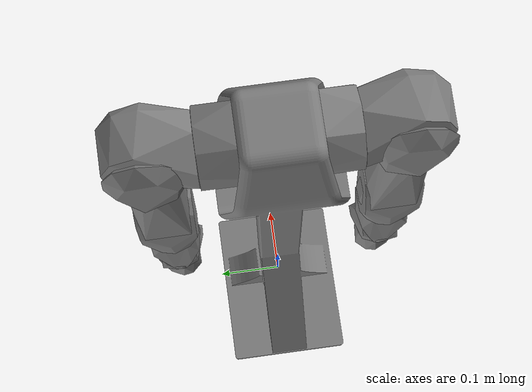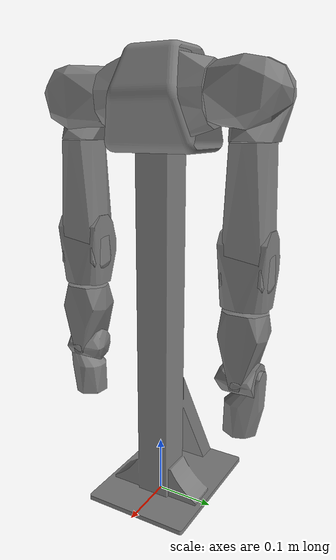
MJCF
<mujoco model="nana_v3">
  <compiler angle="radian" meshdir="../mesh"/>

  <asset>
    <mesh name="body_link0_symp" content_type="model/stl" file="body/collision/body_link0_symp.stl" scale="0.001 0.001 0.001"/>
    <mesh name="link0_symp" content_type="model/stl" file="arm/collision/link0_symp.stl" scale="0.001 -0.001 0.001"/>
    <mesh name="link1_symp" content_type="model/stl" file="arm/collision/link1_symp.stl" scale="0.001 -0.001 0.001"/>
    <mesh name="link2_symp" content_type="model/stl" file="arm/collision/link2_symp.stl" scale="0.001 -0.001 0.001"/>
    <mesh name="link3_symp" content_type="model/stl" file="arm/collision/link3_symp.stl" scale="0.001 0.001 0.001"/>
    <mesh name="link4_symp" content_type="model/stl" file="arm/collision/link4_symp.stl" scale="0.001 0.001 0.001"/>
    <mesh name="link5_symp" content_type="model/stl" file="arm/collision/link5_symp.stl" scale="0.001 -0.001 0.001"/>
    <mesh name="link6_symp" content_type="model/stl" file="arm/collision/link6_symp.stl" scale="0.001 -0.001 0.001"/>
    <mesh name="link7_symp" content_type="model/stl" file="arm/collision/link7_symp.stl" scale="0.001 -0.001 0.001"/>
    <mesh name="link0_symp1" content_type="model/stl" file="arm/collision/link0_symp.stl" scale="0.001 0.001 0.001"/>
    <mesh name="link1_symp1" content_type="model/stl" file="arm/collision/link1_symp.stl" scale="0.001 0.001 0.001"/>
    <mesh name="link2_symp1" content_type="model/stl" file="arm/collision/link2_symp.stl" scale="0.001 0.001 0.001"/>
    <mesh name="link5_symp1" content_type="model/stl" file="arm/collision/link5_symp.stl" scale="0.001 0.001 0.001"/>
    <mesh name="link6_symp1" content_type="model/stl" file="arm/collision/link6_symp.stl" scale="0.001 0.001 0.001"/>
    <mesh name="link7_symp1" content_type="model/stl" file="arm/collision/link7_symp.stl" scale="0.001 0.001 0.001"/>
  </asset>

  <worldbody>
    <!-- 1. Teleop Origin Frame -->
    <site name="arm_origin" pos="0 0 0.698" size="0.02" rgba="1 0.8 0 1" group="4"/>

    <geom name="nana_v3_body_link0_collision" type="mesh" mesh="body_link0_symp"/>
    <geom name="nana_v3_left_link0_collision" pos="0 0.031 0.698" quat="0.707105 -0.707108 0 0" type="mesh" mesh="link0_symp"/>
    <geom name="nana_v3_right_link0_collision" pos="0 -0.031 0.698" quat="0.707105 0.707108 0 0" type="mesh" mesh="link0_symp1"/>

    <!-- Left Arm -->
    <body name="nana_v3_left_link1" pos="0 0.0935 0.698" quat="0.707105 -0.707108 0 0">
      <inertial pos="0.00114677 -3.31999e-05 0.0539528" quat="0.999653 -0.00178277 0.0262159 0.0018256" mass="1.14167" diaginertia="0.00156853 0.001273 0.00101447"/>
      <joint name="openarm_left_joint1" pos="0 0 0" axis="0 0 1" range="-1.39626 3.49066" actuatorfrcrange="-40 40"/>
      <geom name="nana_v3_left_link1_collision" pos="0 0 -0.0625" type="mesh" mesh="link1_symp"/>
      <body name="nana_v3_left_link2" pos="-0.0301 0 0.06" quat="0.707107 -0.707107 0 0">
        <inertial pos="0.00839629 2.01451e-08 0.0325665" quat="0.966167 -0.00423301 0.257864 -0.00305037" mass="0.277509" diaginertia="0.000421651 0.000376006 0.000169343"/>
        <joint name="openarm_left_joint2" pos="0 0 0" axis="-1 0 0" range="-1.74533 1.74533" actuatorfrcrange="-40 40"/>
        <geom name="nana_v3_left_link2_collision" pos="0.0301 0 -0.1225" type="mesh" mesh="link2_symp"/>
        <body name="nana_v3_left_link3" pos="0.0301 0 0.06625">
          <inertial pos="-0.00210475 0.000554909 0.0904747" quat="0.999951 -0.00493243 -0.00144148 0.00846755" mass="1.07386" diaginertia="0.00437205 0.00431934 0.000660613"/>
          <joint name="openarm_left_joint3" pos="0 0 0" axis="0 0 1" range="-1.5708 1.5708" actuatorfrcrange="-27 27"/>
          <geom name="nana_v3_left_link3_collision" pos="0 0 -0.18875" quat="1 0 0 0" type="mesh" mesh="link3_symp"/>
          <body name="nana_v3_left_link4" pos="0 0.0315 0.15375">
            <inertial pos="-0.00290068 -0.0303058 0.0633964" quat="0.994282 0.0996876 0.0329726 -0.0194356" mass="0.634853" diaginertia="0.000624355 0.000518596 0.000325049"/>
            <joint name="openarm_left_joint4" pos="0 0 0" axis="0 1 0" range="0 2.44346" actuatorfrcrange="-27 27"/>
            <geom name="nana_v3_left_link4_collision" pos="0 -0.0315 -0.3425" type="mesh" mesh="link4_symp"/>
            <body name="nana_v3_left_link5" pos="0 -0.0315 0.0955">
              <inertial pos="-0.00304967 -0.00088669 0.0430798" quat="0.811398 0.0020034 -0.0362076 0.583368" mass="0.615659" diaginertia="0.000448064 0.000420549 0.000323387"/>
              <joint name="openarm_left_joint5" pos="0 0 0" axis="0 0 1" range="-1.5708 1.5708" actuatorfrcrange="-7 7"/>
              <geom name="nana_v3_left_link5_collision" pos="0 0 -0.438" quat="1 0 0 0" type="mesh" mesh="link5_symp"/>
              <body name="nana_v3_left_link6" pos="0.0375 0 0.1205">
                <inertial pos="-0.0371366 -0.000332305 -9.49837e-05" quat="-0.162305 0.716462 -0.124543 0.666955" mass="0.475203" diaginertia="0.000159518 0.000156606 0.000142875"/>
                <joint name="openarm_left_joint6" pos="0 0 0" axis="1 0 0" range="-0.785398 0.785398" actuatorfrcrange="-7 7"/>
                <geom name="nana_v3_left_link6_collision" pos="-0.0375 0 -0.5585" quat="1 0 0 0" type="mesh" mesh="link6_symp"/>
                <body name="nana_v3_left_link7" pos="-0.0375 0 0">
                  <inertial pos="5.66071e-05 -0.0104246 0.0713712" quat="0.973407 -0.228997 -0.00214604 -0.0058434" mass="0.565977" diaginertia="0.00166126 0.0015558 0.00130543"/>
                  <joint name="openarm_left_joint7" pos="0 0 0" axis="0 -1 0" range="-1.5708 1.5708" actuatorfrcrange="-7 7"/>
                  <geom name="nana_v3_left_link7_collision" pos="0 0 -0.5585" type="mesh" mesh="link7_symp"/>
                  <!-- 2. Left End-Effector Sites -->
                  <site name="left_ee_control_point" pos="0 0 0.08" quat="0 1 0 0" size="0.01" rgba="0 1 0 1"/>
                  <body name="nana_v3_left_hand" pos="0 0 0.08">
                    <inertial pos="0 0 0" mass="0.05" diaginertia="0.0001 0.0001 0.0001"/>
                    <joint name="openarm_left_finger_joint1" pos="0 0 0" axis="1 0 0" range="-0.7854 0"/>
                    <joint name="openarm_left_finger_joint2" pos="0 0 0" axis="-1 0 0" range="0 0.7854"/>
                    <site name="nana_v3_left_hand_site" pos="0 0 0" size="0.005" rgba="0 1 0 0.5"/>
                  </body>
                </body>
              </body>
            </body>
          </body>
        </body>
      </body>
    </body>

    <!-- Right Arm -->
    <body name="nana_v3_right_link1" pos="0 -0.0935 0.698" quat="0.707105 0.707108 0 0">
      <inertial pos="0.00114677 3.31999e-05 0.0539528" quat="0.999653 0.00178277 0.0262159 -0.0018256" mass="1.14167" diaginertia="0.00156853 0.001273 0.00101447"/>
      <joint name="openarm_right_joint1" pos="0 0 0" axis="0 0 1" range="-1.39626 3.49066" actuatorfrcrange="-40 40"/>
      <geom name="nana_v3_right_link1_collision" pos="0 0 -0.0625" type="mesh" mesh="link1_symp1"/>
      <body name="nana_v3_right_link2" pos="-0.0301 0 0.06" quat="0.707107 0.707107 0 0">
        <inertial pos="0.00839629 -2.01451e-08 0.0325665" quat="0.966167 0.00423301 0.257864 0.00305037" mass="0.277509" diaginertia="0.000421651 0.000376006 0.000169343"/>
        <joint name="openarm_right_joint2" pos="0 0 0" axis="-1 0 0" range="-1.74533 1.74533" actuatorfrcrange="-40 40"/>
        <geom name="nana_v3_right_link2_collision" pos="0.0301 0 -0.1225" quat="1 0 0 0" type="mesh" mesh="link2_symp1"/>
        <body name="nana_v3_right_link3" pos="0.0301 0 0.06625">
          <inertial pos="-0.00210475 0.000554909 0.0904747" quat="0.999951 -0.00493243 -0.00144148 0.00846755" mass="1.07386" diaginertia="0.00437205 0.00431934 0.000660613"/>
          <joint name="openarm_right_joint3" pos="0 0 0" axis="0 0 1" range="-1.5708 1.5708" actuatorfrcrange="-27 27"/>
          <geom name="nana_v3_right_link3_collision" pos="0 0 -0.18875" quat="1 0 0 0" type="mesh" mesh="link3_symp"/>
          <body name="nana_v3_right_link4" pos="0 0.0315 0.15375">
            <inertial pos="-0.00290068 -0.0303058 0.0633964" quat="0.994282 0.0996876 0.0329726 -0.0194356" mass="0.634853" diaginertia="0.000624355 0.000518596 0.000325049"/>
            <joint name="openarm_right_joint4" pos="0 0 0" axis="0 1 0" range="0 2.44346" actuatorfrcrange="-27 27"/>
            <geom name="nana_v3_right_link4_collision" pos="0 -0.0315 -0.3425" type="mesh" mesh="link4_symp"/>
            <body name="nana_v3_right_link5" pos="0 -0.0315 0.0955">
              <inertial pos="-0.00304967 0.00088669 0.0430798" quat="0.583368 -0.0362076 0.0020034 0.811398" mass="0.615659" diaginertia="0.000448064 0.000420549 0.000323387"/>
              <joint name="openarm_right_joint5" pos="0 0 0" axis="0 0 1" range="-1.5708 1.5708" actuatorfrcrange="-7 7"/>
              <geom name="nana_v3_right_link5_collision" pos="0 0 -0.438" quat="1 0 0 0" type="mesh" mesh="link5_symp1"/>
              <body name="nana_v3_right_link6" pos="0.0375 0 0.1205">
                <inertial pos="-0.0371366 0.000332305 -9.49837e-05" quat="0.162305 0.716462 0.124543 0.666955" mass="0.475203" diaginertia="0.000159518 0.000156606 0.000142875"/>
                <joint name="openarm_right_joint6" pos="0 0 0" axis="1 0 0" range="-0.785398 0.785398" actuatorfrcrange="-7 7"/>
                <geom name="nana_v3_right_link6_collision" pos="-0.0375 0 -0.5585" quat="1 0 0 0" type="mesh" mesh="link6_symp1"/>
                <body name="nana_v3_right_link7" pos="-0.0375 0 0">
                  <inertial pos="5.66071e-05 0.0104246 0.0713712" quat="0.973407 0.228997 -0.00214604 0.0058434" mass="0.565977" diaginertia="0.00166126 0.0015558 0.00130543"/>
                  <joint name="openarm_right_joint7" pos="0 0 0" axis="0 1 0" range="-1.5708 1.5708" actuatorfrcrange="-7 7"/>
                  <geom name="nana_v3_right_link7_collision" pos="0 0 -0.5585" type="mesh" mesh="link7_symp1"/>
                  <!-- 3. Right End-Effector Sites -->
                  <site name="right_ee_control_point" pos="0 0 0.08" quat="0 1 0 0" size="0.01" rgba="1 0 0 1"/>
                  <body name="nana_v3_right_hand" pos="0 0 0.08">
                    <inertial pos="0 0 0" mass="0.05" diaginertia="0.0001 0.0001 0.0001"/>
                    <joint name="openarm_right_finger_joint1" pos="0 0 0" axis="-1 0 0" range="-0.7854 0"/>
                    <joint name="openarm_right_finger_joint2" pos="0 0 0" axis="1 0 0" range="0 0.7854"/>
                    <site name="nana_v3_right_hand_site" pos="0 0 0" size="0.005" rgba="1 0 0 0.5"/>
                  </body>
                </body>
              </body>
            </body>
          </body>
        </body>
      </body>
    </body>
  </worldbody>

  <actuator>
    <position name="left_joint1_ctrl" joint="openarm_left_joint1" kp="230" kv="2.7" ctrllimited="true" ctrlrange="-1.39626 3.49066" />
    <position name="left_joint2_ctrl" joint="openarm_left_joint2" kp="230" kv="2.7" ctrllimited="true" ctrlrange="-1.74533 1.74533" />
    <position name="left_joint3_ctrl" joint="openarm_left_joint3" kp="190" kv="2.2" ctrllimited="true" ctrlrange="-1.5708 1.5708" />
    <position name="left_joint4_ctrl" joint="openarm_left_joint4" kp="190" kv="2.2" ctrllimited="true" ctrlrange="0 2.44346" />
    <position name="left_joint5_ctrl" joint="openarm_left_joint5" kp="30" kv="1.5" ctrllimited="true" ctrlrange="-1.5708 1.5708" />
    <position name="left_joint6_ctrl" joint="openarm_left_joint6" kp="30" kv="1.5" ctrllimited="true" ctrlrange="-0.785398 0.785398" />
    <position name="left_joint7_ctrl" joint="openarm_left_joint7" kp="30" kv="1.5" ctrllimited="true" ctrlrange="-1.5708 1.5708" />
    <position name="left_finger1_ctrl" joint="openarm_left_finger_joint1" kp="30" kv="0.2" ctrllimited="true" ctrlrange="-0.7854 0" />
    <position name="right_joint1_ctrl" joint="openarm_right_joint1" kp="230" kv="2.7" ctrllimited="true" ctrlrange="-1.39626 3.49066" />
    <position name="right_joint2_ctrl" joint="openarm_right_joint2" kp="230" kv="2.7" ctrllimited="true" ctrlrange="-1.74533 1.74533" />
    <position name="right_joint3_ctrl" joint="openarm_right_joint3" kp="190" kv="2.2" ctrllimited="true" ctrlrange="-1.5708 1.5708" />
    <position name="right_joint4_ctrl" joint="openarm_right_joint4" kp="190" kv="2.2" ctrllimited="true" ctrlrange="0 2.44346" />
    <position name="right_joint5_ctrl" joint="openarm_right_joint5" kp="30" kv="1.5" ctrllimited="true" ctrlrange="-1.5708 1.5708" />
    <position name="right_joint6_ctrl" joint="openarm_right_joint6" kp="30" kv="1.5" ctrllimited="true" ctrlrange="-0.785398 0.785398" />
    <position name="right_joint7_ctrl" joint="openarm_right_joint7" kp="30" kv="1.5" ctrllimited="true" ctrlrange="-1.5708 1.5708" />
    <position name="right_finger1_ctrl" joint="openarm_right_finger_joint1" kp="30" kv="0.2" ctrllimited="true" ctrlrange="-0.7854 0" />
  </actuator>

  <!-- 4. Keyframe configuration -->
  <keyframe>
    <key name="home" qpos="0 0 0 0 0 0 0 0 0 0 0 0 0 0 0 0 0 0"/>
  </keyframe>
</mujoco>
